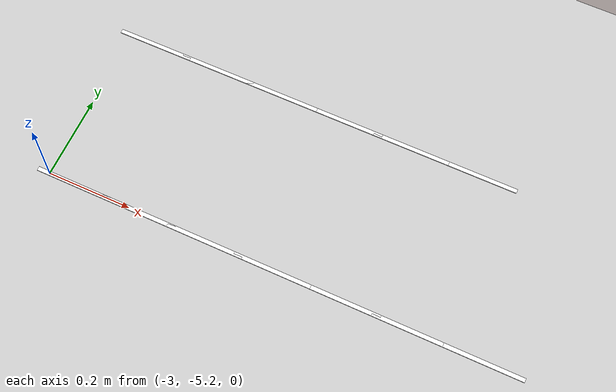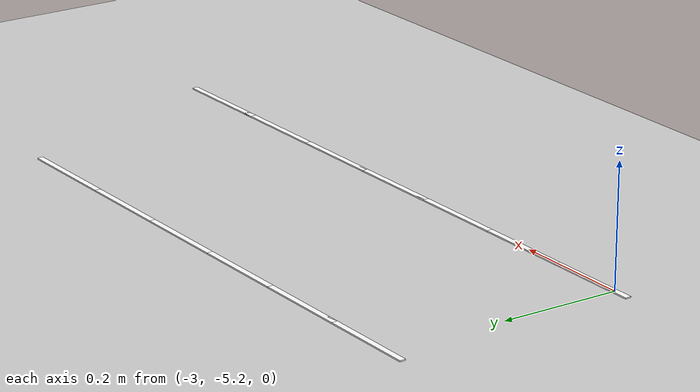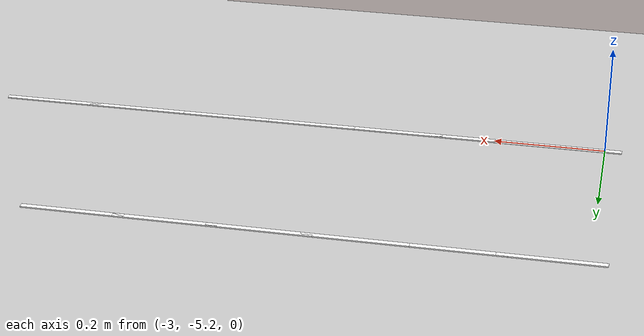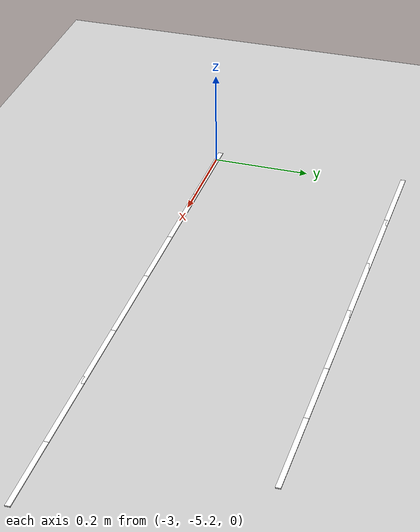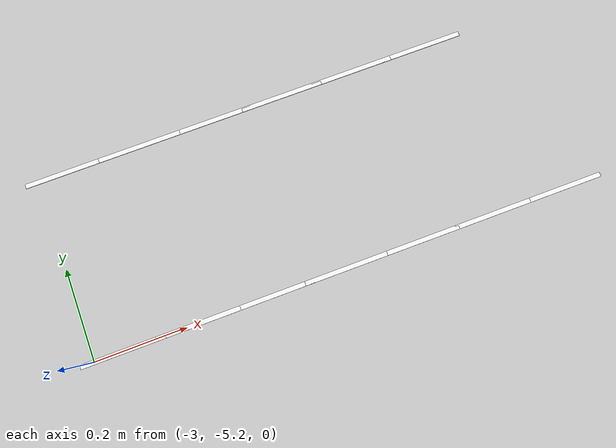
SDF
<sdf version="1.7">
 <world name="default">
  <model name="ground_plane">
   <static>1</static>
   <link name="link">
    <collision name="collision">
     <geometry><plane><normal>0 0 1</normal><size>100 100</size></plane></geometry>
     <surface>
      <contact><collide_bitmask>65535</collide_bitmask></contact>
      <friction><ode><mu>100</mu><mu2>50</mu2></ode></friction>
     </surface>
    </collision>
    <visual name="visual">
     <cast_shadows>0</cast_shadows>
     <geometry><plane><normal>0 0 1</normal><size>100 100</size></plane></geometry>
     <material>
      <script><uri>file://media/materials/scripts/gazebo.material</uri><name>Gazebo/Grey</name></script>
     </material>
    </visual>
   </link>
  </model>
  <model name="lane_line_left_6">
   <static>1</static>
   <link name="link">
    <pose>0 0 -0.004 0 -0 0</pose>
    <visual name="visual">
     <geometry><box><size>0.1833 0.01 0.01</size></box></geometry>
     <material><ambient>1 1 1 1</ambient><diffuse>1 1 1 1</diffuse></material>
    </visual>
    <collision name="collision"><geometry><box><size>0.1833 0.01 0.01</size></box></geometry></collision>
   </link>
   <pose>-2.93878 -4.8 0 0 -0 0</pose>
  </model>
  <model name="lane_line_right_6">
   <static>1</static>
   <link name="link">
    <pose>0 0 -0.004 0 -0 0</pose>
    <visual name="visual">
     <geometry><box><size>0.1833 0.01 0.01</size></box></geometry>
     <material><ambient>1 1 1 1</ambient><diffuse>1 1 1 1</diffuse></material>
    </visual>
    <collision name="collision"><geometry><box><size>0.1833 0.01 0.01</size></box></geometry></collision>
   </link>
   <pose>-2.93878 -5.2 0 0 -0 0</pose>
  </model>
  <model name="lane_line_left_7">
   <static>1</static>
   <link name="link">
    <pose>0 0 -0.004 0 -0 0</pose>
    <visual name="visual">
     <geometry><box><size>0.1833 0.01 0.01</size></box></geometry>
     <material><ambient>1 1 1 1</ambient><diffuse>1 1 1 1</diffuse></material>
    </visual>
    <collision name="collision"><geometry><box><size>0.1833 0.01 0.01</size></box></geometry></collision>
   </link>
   <pose>-2.77551 -4.8 0 0 -0 0</pose>
  </model>
  <model name="lane_line_right_7">
   <static>1</static>
   <link name="link">
    <pose>0 0 -0.004 0 -0 0</pose>
    <visual name="visual">
     <geometry><box><size>0.1833 0.01 0.01</size></box></geometry>
     <material><ambient>1 1 1 1</ambient><diffuse>1 1 1 1</diffuse></material>
    </visual>
    <collision name="collision"><geometry><box><size>0.1833 0.01 0.01</size></box></geometry></collision>
   </link>
   <pose>-2.77551 -5.2 0 0 -0 0</pose>
  </model>
  <model name="lane_line_left_8">
   <static>1</static>
   <link name="link">
    <pose>0 0 -0.004 0 -0 0</pose>
    <visual name="visual">
     <geometry><box><size>0.1833 0.01 0.01</size></box></geometry>
     <material><ambient>1 1 1 1</ambient><diffuse>1 1 1 1</diffuse></material>
    </visual>
    <collision name="collision"><geometry><box><size>0.1833 0.01 0.01</size></box></geometry></collision>
   </link>
   <pose>-2.61224 -4.8 0 0 -0 0</pose>
  </model>
  <model name="lane_line_right_8">
   <static>1</static>
   <link name="link">
    <pose>0 0 -0.004 0 -0 0</pose>
    <visual name="visual">
     <geometry><box><size>0.1833 0.01 0.01</size></box></geometry>
     <material><ambient>1 1 1 1</ambient><diffuse>1 1 1 1</diffuse></material>
    </visual>
    <collision name="collision"><geometry><box><size>0.1833 0.01 0.01</size></box></geometry></collision>
   </link>
   <pose>-2.61224 -5.2 0 0 -0 0</pose>
  </model>
  <model name="lane_line_left_9">
   <static>1</static>
   <link name="link">
    <pose>0 0 -0.004 0 -0 0</pose>
    <visual name="visual">
     <geometry><box><size>0.1833 0.01 0.01</size></box></geometry>
     <material><ambient>1 1 1 1</ambient><diffuse>1 1 1 1</diffuse></material>
    </visual>
    <collision name="collision"><geometry><box><size>0.1833 0.01 0.01</size></box></geometry></collision>
   </link>
   <pose>-2.44898 -4.8 0 0 -0 0</pose>
  </model>
  <model name="lane_line_right_9">
   <static>1</static>
   <link name="link">
    <pose>0 0 -0.004 0 -0 0</pose>
    <visual name="visual">
     <geometry><box><size>0.1833 0.01 0.01</size></box></geometry>
     <material><ambient>1 1 1 1</ambient><diffuse>1 1 1 1</diffuse></material>
    </visual>
    <collision name="collision"><geometry><box><size>0.1833 0.01 0.01</size></box></geometry></collision>
   </link>
   <pose>-2.44898 -5.2 0 0 -0 0</pose>
  </model>
  <model name="lane_line_left_10">
   <static>1</static>
   <link name="link">
    <pose>0 0 -0.004 0 -0 0</pose>
    <visual name="visual">
     <geometry><box><size>0.1833 0.01 0.01</size></box></geometry>
     <material><ambient>1 1 1 1</ambient><diffuse>1 1 1 1</diffuse></material>
    </visual>
    <collision name="collision"><geometry><box><size>0.1833 0.01 0.01</size></box></geometry></collision>
   </link>
   <pose>-2.28571 -4.8 0 0 -0 0</pose>
  </model>
  <model name="lane_line_right_10">
   <static>1</static>
   <link name="link">
    <pose>0 0 -0.004 0 -0 0</pose>
    <visual name="visual">
     <geometry><box><size>0.1833 0.01 0.01</size></box></geometry>
     <material><ambient>1 1 1 1</ambient><diffuse>1 1 1 1</diffuse></material>
    </visual>
    <collision name="collision"><geometry><box><size>0.1833 0.01 0.01</size></box></geometry></collision>
   </link>
   <pose>-2.28571 -5.2 0 0 -0 0</pose>
  </model>
  <model name="lane_line_left_11">
   <static>1</static>
   <link name="link">
    <pose>0 0 -0.004 0 -0 0</pose>
    <visual name="visual">
     <geometry><box><size>0.1833 0.01 0.01</size></box></geometry>
     <material><ambient>1 1 1 1</ambient><diffuse>1 1 1 1</diffuse></material>
    </visual>
    <collision name="collision"><geometry><box><size>0.1833 0.01 0.01</size></box></geometry></collision>
   </link>
   <pose>-2.12245 -4.8 0 0 -0 0</pose>
  </model>
  <model name="lane_line_right_11">
   <static>1</static>
   <link name="link">
    <pose>0 0 -0.004 0 -0 0</pose>
    <visual name="visual">
     <geometry><box><size>0.1833 0.01 0.01</size></box></geometry>
     <material><ambient>1 1 1 1</ambient><diffuse>1 1 1 1</diffuse></material>
    </visual>
    <collision name="collision"><geometry><box><size>0.1833 0.01 0.01</size></box></geometry></collision>
   </link>
   <pose>-2.12245 -5.2 0 0 -0 0</pose>
  </model>
  <model name="lane_line_right_12">
   <static>1</static>
   <link name="link">
    <pose>0 0 -0.004 0 -0 0</pose>
    <visual name="visual">
     <geometry><box><size>0.1833 0.01 0.01</size></box></geometry>
     <material><ambient>1 1 1 1</ambient><diffuse>1 1 1 1</diffuse></material>
    </visual>
    <collision name="collision"><geometry><box><size>0.1833 0.01 0.01</size></box></geometry></collision>
   </link>
   <pose>-1.95918 -5.2 0 0 -0 0</pose>
  </model>
 </world>
</sdf>
